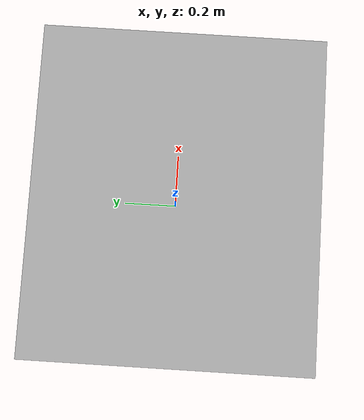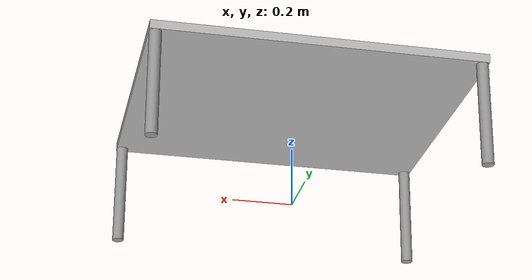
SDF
<?xml version='1.0'?>
<sdf version='1.7'>
  <model name='platform'>
    <!-- Table Surface Link -->
    <link name='table_surface'>
      <inertial>
        <mass>13.98</mass>
        <inertia>
          <ixx>0.1</ixx>
          <ixy>0.0</ixy>
          <ixz>0.0</ixz>
          <iyy>0.1</iyy>
          <iyz>0.0</iyz>
          <izz>0.1</izz>
        </inertia>
      </inertial>
      <collision name='surface_collision'>
        <pose>0 0 0.367 0 0 0</pose>
        <geometry>
          <box>
            <size>1.1 0.95 0.03</size>
          </box>
        </geometry>
        <surface>
          <friction>
            <ode>
              <mu>1</mu>
              <mu2>1</mu2>
            </ode>
          </friction>
        </surface>
      </collision>
      <visual name='surface_visual'>
        <pose>0 0 0.367 0 0 0</pose>
        <geometry>
          <box>
            <size>1.1 0.95 0.03</size>
          </box>
        </geometry>
        <material>
          <script>
            <uri>model://platform/materials/scripts</uri>
            <uri>model://platform/materials/textures</uri>
            <name>stainless_steel_texture</name>
          </script>
        </material>
      </visual>
    </link>

    <!-- Front Left Leg -->
    <link name='front_left_leg'>
      <inertial>
        <mass>2.796</mass>
        <inertia>
          <ixx>0.01</ixx>
          <ixy>0.0</ixy>
          <ixz>0.0</ixz>
          <iyy>0.01</iyy>
          <iyz>0.0</iyz>
          <izz>0.01</izz>
        </inertia>
      </inertial>
      <collision name='collision'>
        <pose>0.53 0.455 0.1835 0 0 0</pose>
        <geometry>
          <cylinder>
            <radius>0.02</radius>
            <length>0.367</length>
          </cylinder>
        </geometry>
        <surface>
          <friction>
            <ode>
             <mu>1.0</mu>   <!-- Coefficient of friction in the primary direction -->
             <mu2>1.0</mu2> <!-- Coefficient of friction in the secondary direction -->
           </ode>
         </friction>
         <contact>
           <ode>
             <kp>100000</kp> <!-- Stiffness -->
             <kd>1.0</kd>    <!-- Damping -->
           </ode>
         </contact>
        </surface>
      </collision>
      <visual name='visual'>
        <pose>0.53 0.455 0.1835 0 0 0</pose>
        <geometry>
          <cylinder>
            <radius>0.02</radius>
            <length>0.367</length>
          </cylinder>
        </geometry>
        <material>
          <script>
            <uri>file://media/materials/scripts/gazebo.material</uri>
            <name>Gazebo/Grey</name>
          </script>
        </material>
      </visual>
    </link>

    <!-- Front Right Leg -->
    <link name='front_right_leg'>
      <inertial>
        <mass>2.796</mass>
        <inertia>
          <ixx>0.01</ixx>
          <ixy>0.0</ixy>
          <ixz>0.0</ixz>
          <iyy>0.01</iyy>
          <iyz>0.0</iyz>
          <izz>0.01</izz>
        </inertia>
      </inertial>
      <collision name='collision'>
        <pose>0.53 -0.455 0.1835 0 0 0</pose>
        <geometry>
          <cylinder>
            <radius>0.02</radius>
            <length>0.367</length>
          </cylinder>
        </geometry>
        <surface>
          <friction>
            <ode>
             <mu>1.0</mu>   <!-- Coefficient of friction in the primary direction -->
             <mu2>1.0</mu2> <!-- Coefficient of friction in the secondary direction -->
           </ode>
         </friction>
         <contact>
           <ode>
             <kp>100000</kp> <!-- Stiffness -->
             <kd>1.0</kd>    <!-- Damping -->
           </ode>
         </contact>
        </surface>
      </collision>
      <visual name='visual'>
        <pose>0.53 -0.455 0.1835 0 0 0</pose>
        <geometry>
          <cylinder>
            <radius>0.02</radius>
            <length>0.367</length>
          </cylinder>
        </geometry>
        <material>
          <script>
            <uri>file://media/materials/scripts/gazebo.material</uri>
            <name>Gazebo/Grey</name>
          </script>
        </material>
      </visual>
    </link>

    <!-- Back Left Leg -->
    <link name='back_left_leg'>
      <inertial>
        <mass>2.796</mass>
        <inertia>
          <ixx>0.01</ixx>
          <ixy>0.0</ixy>
          <ixz>0.0</ixz>
          <iyy>0.01</iyy>
          <iyz>0.0</iyz>
          <izz>0.01</izz>
        </inertia>
      </inertial>
      <collision name='collision'>
        <pose>-0.53 0.455 0.1835 0 0 0</pose>
        <geometry>
          <cylinder>
            <radius>0.02</radius>
            <length>0.367</length>
          </cylinder>
        </geometry>
        <surface>
          <friction>
            <ode>
             <mu>1.0</mu>   <!-- Coefficient of friction in the primary direction -->
             <mu2>1.0</mu2> <!-- Coefficient of friction in the secondary direction -->
           </ode>
         </friction>
         <contact>
           <ode>
             <kp>100000</kp> <!-- Stiffness -->
             <kd>1.0</kd>    <!-- Damping -->
           </ode>
         </contact>
        </surface>
      </collision>
      <visual name='visual'>
        <pose>-0.53 0.455 0.1835 0 0 0</pose>
        <geometry>
          <cylinder>
            <radius>0.02</radius>
            <length>0.367</length>
          </cylinder>
        </geometry>
        <material>
          <script>
            <uri>file://media/materials/scripts/gazebo.material</uri>
            <name>Gazebo/Grey</name>
          </script>
        </material>
      </visual>
    </link>

    <!-- Back Right Leg -->
    <link name='back_right_leg'>
      <inertial>
        <mass>2.796</mass>
        <inertia>
          <ixx>0.01</ixx>
          <ixy>0.0</ixy>
          <ixz>0.0</ixz>
          <iyy>0.01</iyy>
          <iyz>0.0</iyz>
          <izz>0.01</izz>
        </inertia>
      </inertial>
      <collision name='collision'>
        <pose>-0.53 -0.455 0.1835 0 0 0</pose>
        <geometry>
          <cylinder>
            <radius>0.02</radius>
            <length>0.367</length>
          </cylinder>
        </geometry>
        <surface>
          <friction>
            <ode>
             <mu>1.0</mu>   <!-- Coefficient of friction in the primary direction -->
             <mu2>1.0</mu2> <!-- Coefficient of friction in the secondary direction -->
           </ode>
         </friction>
         <contact>
           <ode>
             <kp>100000</kp> <!-- Stiffness -->
             <kd>1.0</kd>    <!-- Damping -->
           </ode>
         </contact>
        </surface>
      </collision>
      <visual name='visual'>
        <pose>-0.53 -0.455 0.1835 0 0 0</pose>
        <geometry>
          <cylinder>
            <radius>0.02</radius>
            <length>0.367</length>
          </cylinder>
        </geometry>
        <material>
          <script>
            <uri>file://media/materials/scripts/gazebo.material</uri>
            <name>Gazebo/Grey</name>
          </script>
        </material>
      </visual>
    </link>

    <!-- Joints -->
    <joint name='front_left_joint' type='fixed'>
      <parent>table_surface</parent>
      <child>front_left_leg</child>
      <pose>0.53 0.455 0.1835 0 0 0</pose>
    </joint>

    <joint name='front_right_joint' type='fixed'>
      <parent>table_surface</parent>
      <child>front_right_leg</child>
      <pose>0.53 -0.455 0.1835 0 0 0</pose>
    </joint>

    <joint name='back_left_joint' type='fixed'>
      <parent>table_surface</parent>
      <child>back_left_leg</child>
      <pose>-0.53 0.455 0.1835 0 0 0</pose>
    </joint>

    <joint name='back_right_joint' type='fixed'>
      <parent>table_surface</parent>
      <child>back_right_leg</child>
      <pose>-0.53 -0.455 0.1835 0 0 0</pose>
    </joint>
  </model>
</sdf>
